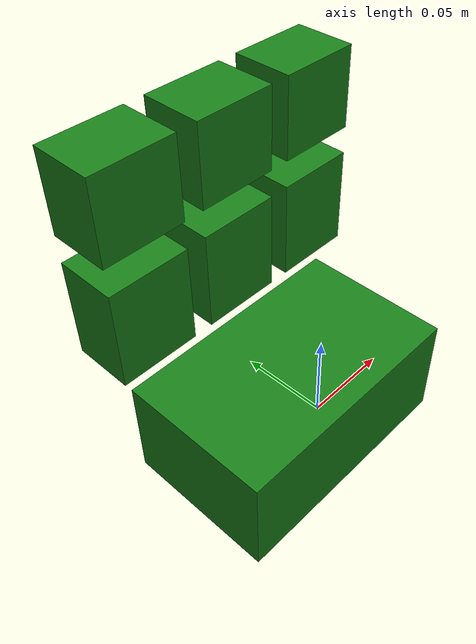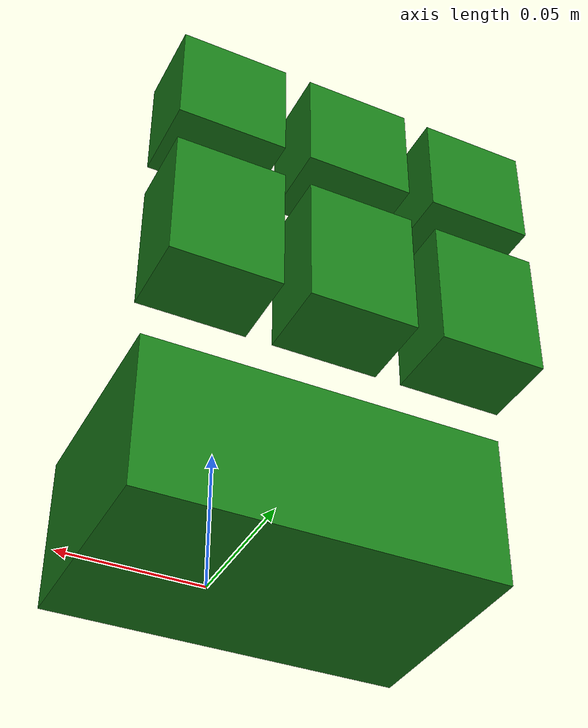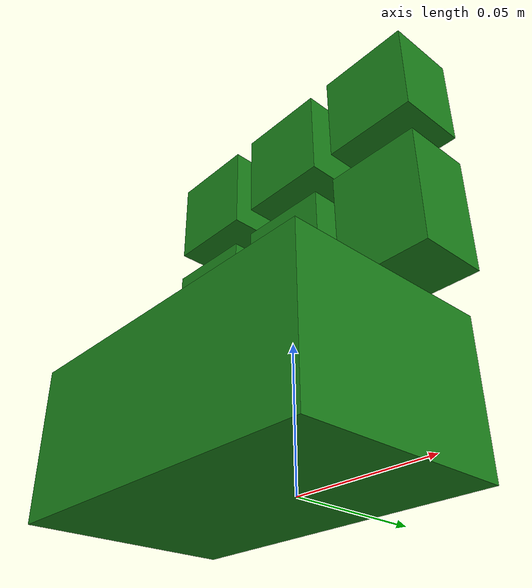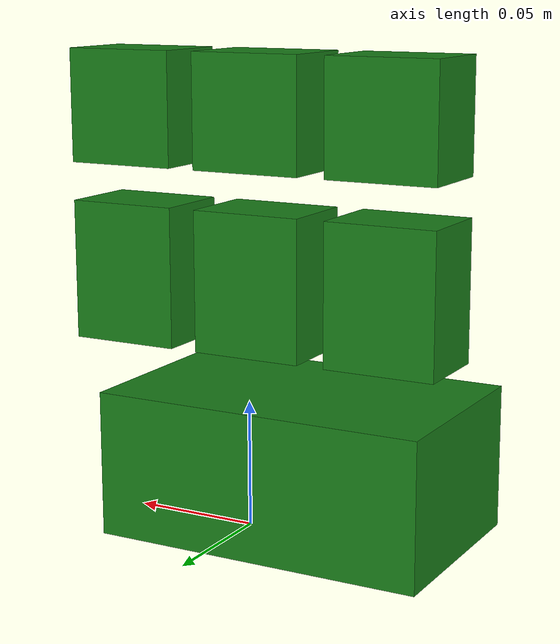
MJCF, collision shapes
<mujoco model="hand_asembly_ver2_URDF_5">
  <compiler angle="radian" meshdir="meshes"/>

  <default>
    <joint damping=".5"/>
    <position kp="1"/>
    <geom density="800" rgba="0.7 0.7 0.7 1" contype="0" conaffinity="0" group="0"/>

    <default class="colision_A">
      <geom type="box" rgba="0.1 0.5 0.1 0.0" contype="2" conaffinity="3" group="1"/>
    </default>
    <default class="colision_B">
      <geom type="box" rgba="0.1 0.5 0.1 0.5" contype="4" conaffinity="1" group="2"/>
    </default>

  </default>

  <asset>
    <texture type="skybox" builtin="gradient" rgb1="1 1 1" rgb2="0.5 0.5 0.5" width="265" height="256"/>

    <mesh name="base_link" content_type="model/stl" file="base_link.STL"/>
    <mesh name="proximal_thumb" content_type="model/stl" file="proximal_thumb.STL"/>
    <mesh name="mideal_thumb" content_type="model/stl" file="mideal_thumb.STL"/>
    <mesh name="distal_thumb" content_type="model/stl" file="distal_thumb.STL"/>
    <mesh name="proximal_finger_first" content_type="model/stl" file="proximal_finger_first.STL"/>
    <mesh name="mideal_finger_first" content_type="model/stl" file="mideal_finger_first.STL"/>
    <mesh name="distal_finger_first" content_type="model/stl" file="distal_finger_first.STL"/>
    <mesh name="proximal_finger_second" content_type="model/stl" file="proximal_finger_second.STL"/>
    <mesh name="mideal_finger_second" content_type="model/stl" file="mideal_finger_second.STL"/>
    <mesh name="distal_finger_second" content_type="model/stl" file="distal_finger_second.STL"/>
  </asset>

  <worldbody>
    <light directional="true" diffuse="0.4 0.4 0.4" specular="0.1 0.1 0.1" pos="0 0 5.0" dir="0 0 -1" castshadow="false" />
    <light directional="true" diffuse="0.6 0.6 0.6" specular="0.2 0.2 0.2" pos="0 0 4" dir="0 0 -1" />

    <!-- PALM -->
    <geom type="mesh" mesh="base_link"/>
    <geom pos="-0.0302 0.04346 0.025" quat="1 0 0 0" type="mesh" mesh="proximal_finger_first"/>
    <geom pos="0.0196 0.04346 0.025" quat="1 0 0 0" type="mesh" mesh="proximal_finger_second"/>
    <geom class="colision_A" pos="-0.023 0.0 0.03" size="0.065 0.04 0.028"/>

    <!-- THUMB -->
    <body name="proximal_thumb" pos="-0.05532 -0.00754 0.0075">
      <inertial pos="-0.015654 0.029955 0.02991" quat="0.664062 0.66104 0.252428 0.241512" mass="0.1524" diaginertia="5.00908e-05 4.26441e-05 3.43441e-05"/>
      <joint name="joint_proximal_thumb" pos="0 0 0" axis="0 0 -1" range="-3.14 0"/>
      <geom type="mesh" mesh="proximal_thumb"/>

      <body name="mideal_thumb" pos="-0.024495 0.05232 0.05561">
        <inertial pos="0.00038305 -0.0013227 0.042746" quat="0.692641 0.0241494 -0.0128903 0.720763" mass="0.080951" diaginertia="2.93704e-05 2.29283e-05 1.49522e-05"/>
        <joint name="joint_mideal_thumb" pos="0 0 0" axis="1 0 0" range="0 1.0"/>
        <geom type="mesh" mesh="mideal_thumb"/>
        <geom class="colision_A" pos="0 -0.005 0.045" size="0.02 0.015 0.025"/>

        <body name="distal_thumb" pos="0 0 0.05861">
          <inertial pos="0.00023967 -0.00041638 0.034377" quat="0.707098 0.00326804 -0.00326966 0.7071" mass="0.025098" diaginertia="1.61256e-05 1.1258e-05 9.064e-06"/>
          <joint name="joint_distal_thumb" pos="0 0 0" axis="1 0 0" range="-1.57 1.57"/>
          <geom type="mesh" mesh="distal_thumb"/>
          <geom class="colision_A" pos="0 -0.005 0.045" size="0.02 0.015 0.02"/>

        </body>

      </body>
    </body>

    <!-- FINGER FIRST -->
    <body name="mideal_finger_first" pos="-0.029825 0.04486 0.06311">
      <inertial pos="0.00038305 -0.00132274 0.0427465" quat="0.692641 0.0241503 -0.0128906 0.720763" mass="0.0809511" diaginertia="2.93701e-05 2.2928e-05 1.49524e-05"/>
      <joint name="joint_mideal_finger_first" pos="0 0 0" axis="1 0 0" range="0 1.0"/>
      <geom type="mesh" mesh="mideal_finger_first"/>
      <geom class="colision_A" pos="0 -0.005 0.045" size="0.02 0.015 0.025"/>

      <body name="distal_finger_first" pos="0 0 0.05861">
        <inertial pos="0.000239668 -0.000416381 0.0343767" quat="0.707098 0.00326816 -0.00326978 0.7071" mass="0.0250979" diaginertia="1.61254e-05 1.12577e-05 9.06401e-06"/>
        <joint name="joint_distal_finger_first" pos="0 0 0" axis="1 0 0" range="-1.57 1.57"/>
        <geom type="mesh" mesh="distal_finger_first"/>
        <geom class="colision_A" pos="0 -0.005 0.045" size="0.02 0.015 0.02"/>

      </body>

    </body>

    <!-- FINGER SECOND -->
    <body name="mideal_finger_second" pos="0.019975 0.04486 0.06311">
      <inertial pos="0.00038305 -0.00132274 0.0427465" quat="0.692641 0.0241503 -0.0128906 0.720763" mass="0.0809511" diaginertia="2.93701e-05 2.2928e-05 1.49524e-05"/>
      <joint name="joint_mideal_finger_second" pos="0 0 0" axis="1 0 0" range="0 1.0"/>
      <geom type="mesh" mesh="mideal_finger_second"/>
      <geom class="colision_A" pos="0 -0.005 0.045" size="0.02 0.015 0.025"/>

      <body name="distal_finger_second" pos="0 0 0.05861">
        <inertial pos="0.000239667 -0.000416382 0.0343767" quat="0.707098 0.0032682 -0.00326972 0.7071" mass="0.0250979" diaginertia="1.61254e-05 1.12577e-05 9.06401e-06"/>
        <joint name="joint_distal_finger_second" pos="0 0 0" axis="1 0 0" range="-1.57 1.57"/>
        <geom type="mesh" mesh="distal_finger_second"/>
        <geom class="colision_A" pos="0 -0.005 0.045" size="0.02 0.015 0.02"/>

      </body>

    </body>
  </worldbody>

  <actuator>
    <position name="thumb_0" joint="joint_proximal_thumb" ctrlrange="-3.14 0"/>
    <position name="thumb_1" joint="joint_mideal_thumb" ctrlrange="0 1.0"/>
    <position name="thumb_2" joint="joint_distal_thumb" ctrlrange="-1.57 1.57"/>
    <position name="f_finger_0" joint="joint_mideal_finger_first" ctrlrange="0 1.0"/>
    <position name="f_finger_1" joint="joint_distal_finger_first" ctrlrange="-1.57 1.57"/>
    <position name="s_finger_0" joint="joint_mideal_finger_second" ctrlrange="0 1.0"/>
    <position name="s_finger_1" joint="joint_distal_finger_second" ctrlrange="-1.57 1.57"/>
  </actuator>

</mujoco>
